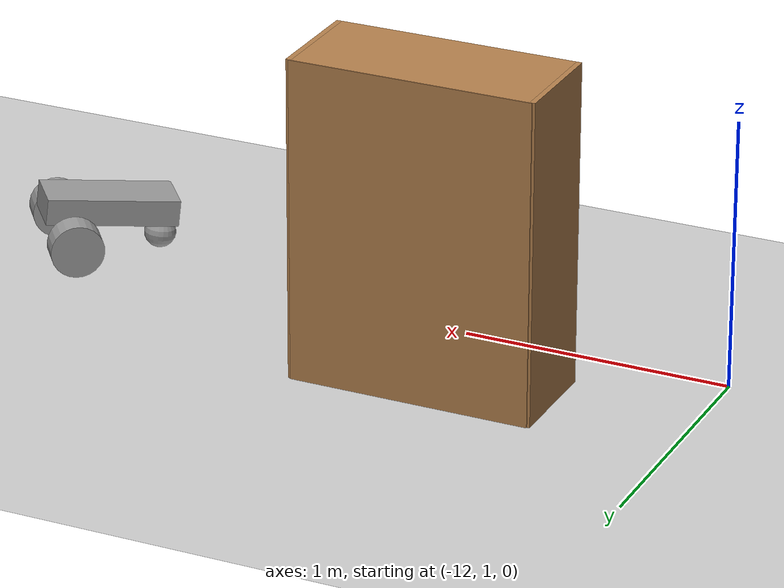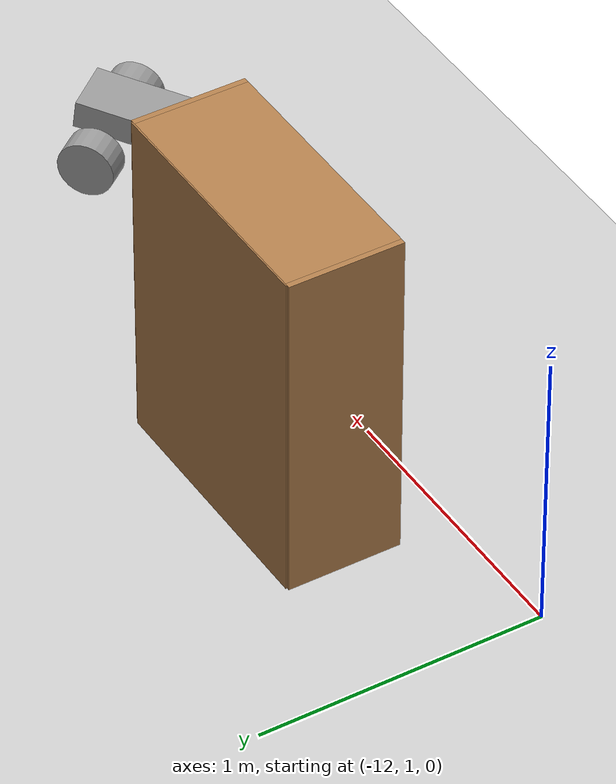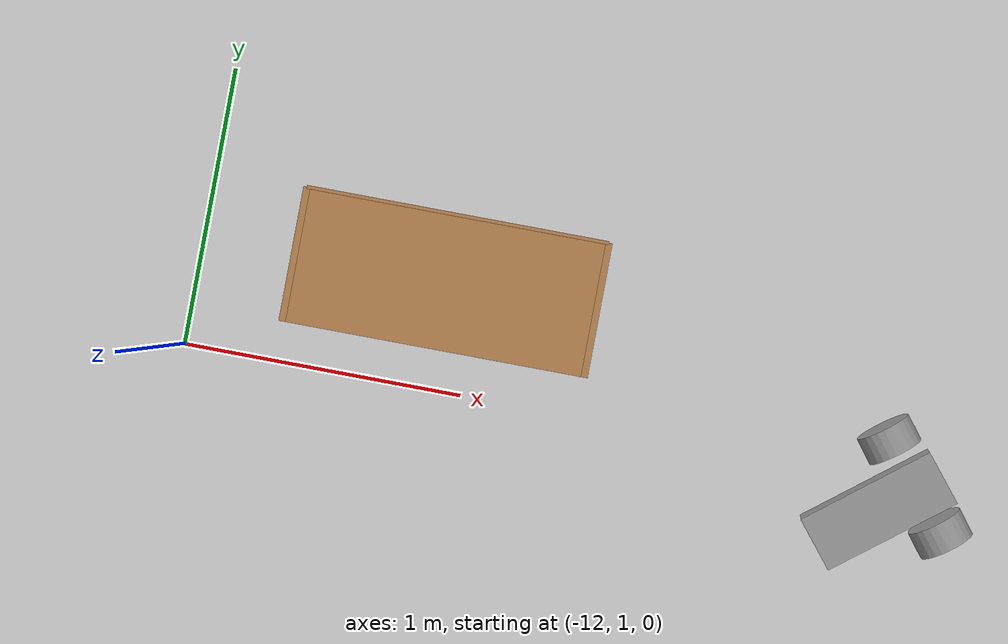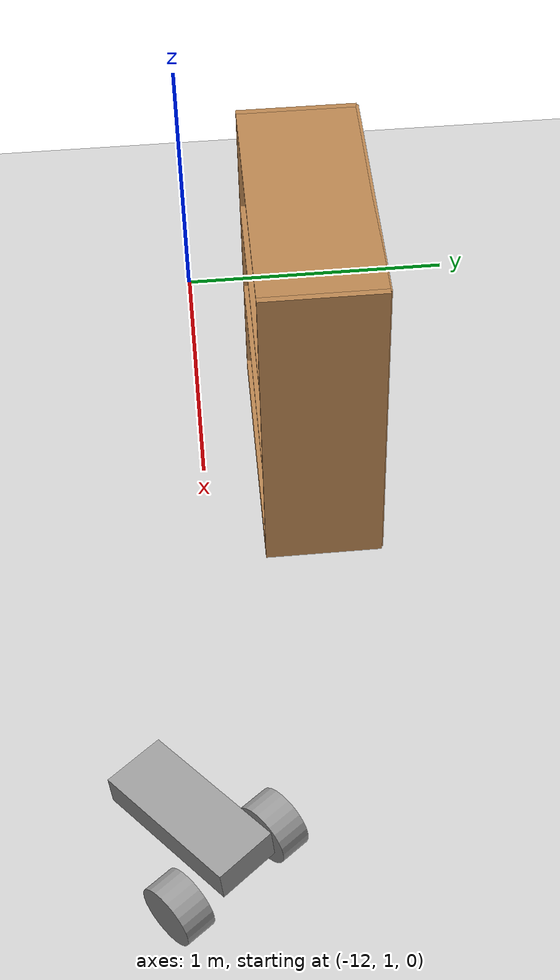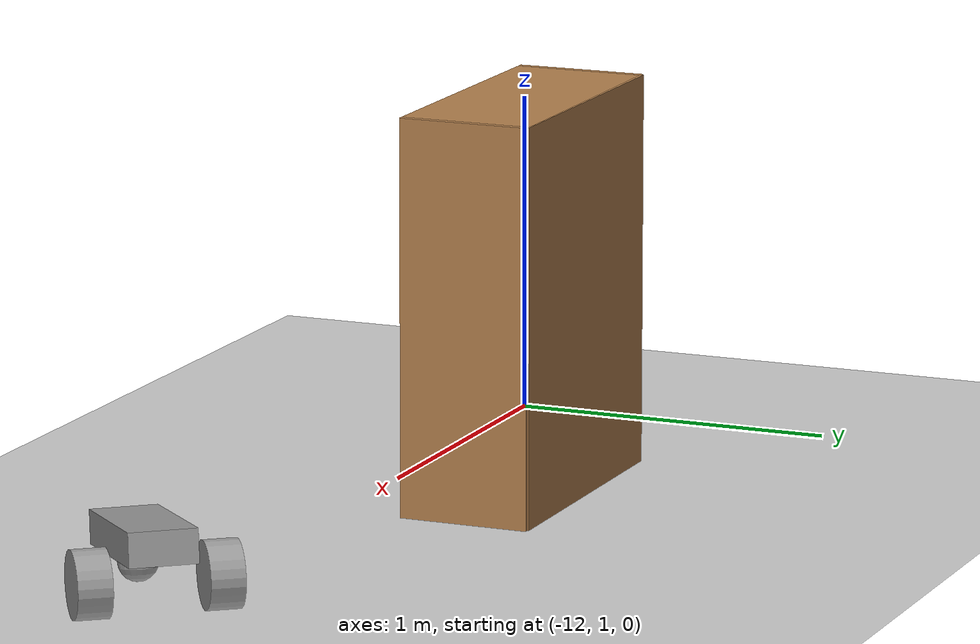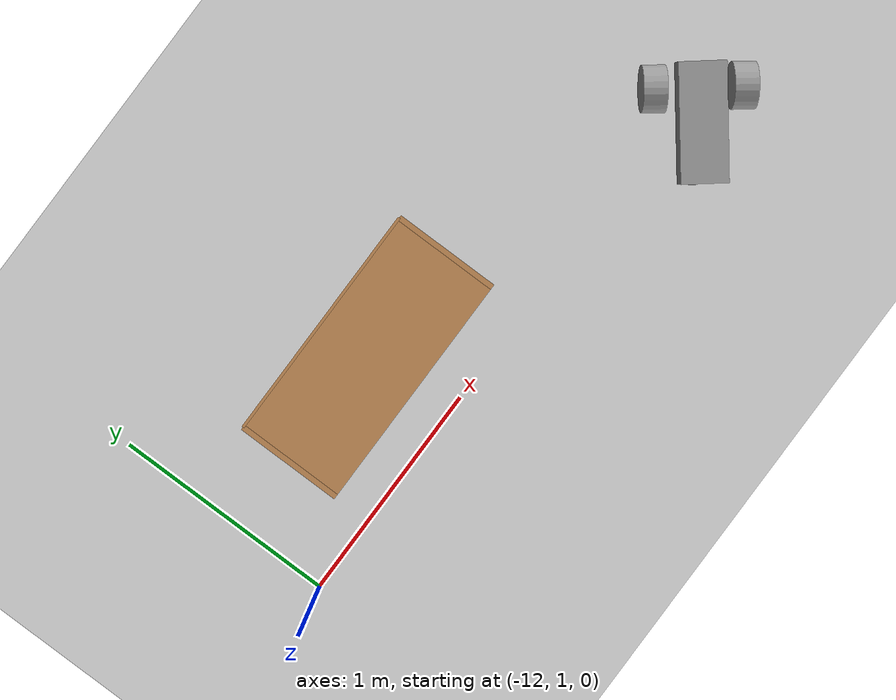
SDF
<sdf version="1.6">
 <world name="default">
  <model name="ground_plane">
   <static>1</static>
   <link name="link">
    <collision name="collision">
     <geometry><plane><normal>0 0 1</normal><size>100 100</size></plane></geometry>
     <surface><friction><ode><mu>100</mu><mu2>50</mu2></ode></friction></surface>
    </collision>
    <visual name="visual">
     <cast_shadows>0</cast_shadows>
     <geometry><plane><normal>0 0 1</normal><size>100 100</size></plane></geometry>
     <material>
      <script><uri>file://media/materials/scripts/gazebo.material</uri><name>Gazebo/Grey</name></script>
     </material>
    </visual>
   </link>
  </model>
  <model name="project3wheelrobot_0">
   <link name="link_0">
    <pose>0.004117 -0.024254 0.075 0 -0 0</pose>
    <inertial>
     <mass>1</mass>
     <inertia>
      <ixx>0.166667</ixx>
      <ixy>0</ixy>
      <ixz>0</ixz>
      <iyy>0.166667</iyy>
      <iyz>0</iyz>
      <izz>0.166667</izz>
     </inertia>
    </inertial>
    <visual name="visual">
     <geometry><box><size>0.2 0.5 0.1</size></box></geometry>
     <material>
      <lighting>1</lighting>
      <script><uri>file://media/materials/scripts/gazebo.material</uri><name>Gazebo/Grey</name></script>
      <shader type="pixel"><normal_map>__default__</normal_map></shader>
      <ambient>0.3 0.3 0.3 1</ambient>
      <diffuse>0.7 0.7 0.7 1</diffuse>
      <specular>0.01 0.01 0.01 1</specular>
      <emissive>0 0 0 1</emissive>
     </material>
    </visual>
    <collision name="collision">
     <geometry><box><size>0.2 0.5 0.1</size></box></geometry>
     <surface>
      <friction>
       <ode><mu>1</mu><mu2>1</mu2><fdir1>0 0 0</fdir1><slip1>0</slip1><slip2>0</slip2></ode>
       <torsional>
        <coefficient>1</coefficient>
        <patch_radius>0</patch_radius>
        <surface_radius>0</surface_radius>
        <use_patch_radius>1</use_patch_radius>
        <ode><slip>0</slip></ode>
       </torsional>
      </friction>
      <bounce><restitution_coefficient>0</restitution_coefficient><threshold>1e+06</threshold></bounce>
      <contact>
       <collide_without_contact>0</collide_without_contact>
       <collide_without_contact_bitmask>1</collide_without_contact_bitmask>
       <collide_bitmask>1</collide_bitmask>
       <ode>
        <soft_cfm>0</soft_cfm>
        <soft_erp>0.2</soft_erp>
        <kp>1e+13</kp>
        <kd>1</kd>
        <max_vel>0.01</max_vel>
        <min_depth>0</min_depth>
       </ode>
       <bullet>
        <split_impulse>1</split_impulse>
        <split_impulse_penetration_threshold>-0.01</split_impulse_penetration_threshold>
        <soft_cfm>0</soft_cfm>
        <soft_erp>0.2</soft_erp>
        <kp>1e+13</kp>
        <kd>1</kd>
       </bullet>
      </contact>
     </surface>
    </collision>
   </link>
   <link name="link_1">
    <pose>-0.17975 0.12395 -0.025 1.57079 9.6e-05 1.54665</pose>
    <inertial>
     <mass>1</mass>
     <inertia><ixx>0.145833</ixx><ixy>0</ixy><ixz>0</ixz><iyy>0.145833</iyy><iyz>0</iyz><izz>0.125</izz></inertia>
    </inertial>
    <visual name="visual">
     <geometry><cylinder><radius>0.1</radius><length>0.1</length></cylinder></geometry>
     <material>
      <lighting>1</lighting>
      <script><uri>file://media/materials/scripts/gazebo.material</uri><name>Gazebo/Grey</name></script>
      <shader type="pixel"><normal_map>__default__</normal_map></shader>
      <ambient>0.3 0.3 0.3 1</ambient>
      <diffuse>0.7 0.7 0.7 1</diffuse>
      <specular>0.01 0.01 0.01 1</specular>
      <emissive>0 0 0 1</emissive>
     </material>
    </visual>
    <collision name="collision">
     <geometry><cylinder><radius>0.1</radius><length>0.1</length></cylinder></geometry>
     <surface>
      <friction>
       <ode><mu>1</mu><mu2>1</mu2><fdir1>0 0 0</fdir1><slip1>0</slip1><slip2>0</slip2></ode>
       <torsional>
        <coefficient>1</coefficient>
        <patch_radius>0</patch_radius>
        <surface_radius>0</surface_radius>
        <use_patch_radius>1</use_patch_radius>
        <ode><slip>0</slip></ode>
       </torsional>
      </friction>
      <bounce><restitution_coefficient>0</restitution_coefficient><threshold>1e+06</threshold></bounce>
      <contact>
       <collide_without_contact>0</collide_without_contact>
       <collide_without_contact_bitmask>1</collide_without_contact_bitmask>
       <collide_bitmask>1</collide_bitmask>
       <ode>
        <soft_cfm>0</soft_cfm>
        <soft_erp>0.2</soft_erp>
        <kp>1e+13</kp>
        <kd>1</kd>
        <max_vel>0.01</max_vel>
        <min_depth>0</min_depth>
       </ode>
       <bullet>
        <split_impulse>1</split_impulse>
        <split_impulse_penetration_threshold>-0.01</split_impulse_penetration_threshold>
        <soft_cfm>0</soft_cfm>
        <soft_erp>0.2</soft_erp>
        <kp>1e+13</kp>
        <kd>1</kd>
       </bullet>
      </contact>
     </surface>
    </collision>
   </link>
   <link name="link_1_clone">
    <pose>0.196517 0.124558 -0.025 1.57079 9.6e-05 1.54665</pose>
    <inertial>
     <mass>1</mass>
     <inertia><ixx>0.145833</ixx><ixy>0</ixy><ixz>0</ixz><iyy>0.145833</iyy><iyz>0</iyz><izz>0.125</izz></inertia>
    </inertial>
    <visual name="visual">
     <geometry><cylinder><radius>0.1</radius><length>0.1</length></cylinder></geometry>
     <material>
      <lighting>1</lighting>
      <script><uri>file://media/materials/scripts/gazebo.material</uri><name>Gazebo/Grey</name></script>
      <shader type="pixel"><normal_map>__default__</normal_map></shader>
      <ambient>0.3 0.3 0.3 1</ambient>
      <diffuse>0.7 0.7 0.7 1</diffuse>
      <specular>0.01 0.01 0.01 1</specular>
      <emissive>0 0 0 1</emissive>
     </material>
    </visual>
    <collision name="collision">
     <geometry><cylinder><radius>0.1</radius><length>0.1</length></cylinder></geometry>
     <surface>
      <friction>
       <ode><mu>1</mu><mu2>1</mu2><fdir1>0 0 0</fdir1><slip1>0</slip1><slip2>0</slip2></ode>
       <torsional>
        <coefficient>1</coefficient>
        <patch_radius>0</patch_radius>
        <surface_radius>0</surface_radius>
        <use_patch_radius>1</use_patch_radius>
        <ode><slip>0</slip></ode>
       </torsional>
      </friction>
      <bounce><restitution_coefficient>0</restitution_coefficient><threshold>1e+06</threshold></bounce>
      <contact>
       <collide_without_contact>0</collide_without_contact>
       <collide_without_contact_bitmask>1</collide_without_contact_bitmask>
       <collide_bitmask>1</collide_bitmask>
       <ode>
        <soft_cfm>0</soft_cfm>
        <soft_erp>0.2</soft_erp>
        <kp>1e+13</kp>
        <kd>1</kd>
        <max_vel>0.01</max_vel>
        <min_depth>0</min_depth>
       </ode>
       <bullet>
        <split_impulse>1</split_impulse>
        <split_impulse_penetration_threshold>-0.01</split_impulse_penetration_threshold>
        <soft_cfm>0</soft_cfm>
        <soft_erp>0.2</soft_erp>
        <kp>1e+13</kp>
        <kd>1</kd>
       </bullet>
      </contact>
     </surface>
    </collision>
   </link>
   <link name="link_2">
    <pose>-0.020883 -0.224254 -0.025 0 -0 0</pose>
    <inertial>
     <mass>1</mass>
     <inertia><ixx>0.1</ixx><ixy>0</ixy><ixz>0</ixz><iyy>0.1</iyy><iyz>0</iyz><izz>0.1</izz></inertia>
    </inertial>
    <visual name="visual">
     <geometry><sphere><radius>0.06</radius></sphere></geometry>
     <material>
      <lighting>1</lighting>
      <script><uri>file://media/materials/scripts/gazebo.material</uri><name>Gazebo/Grey</name></script>
      <shader type="pixel"><normal_map>__default__</normal_map></shader>
      <ambient>0.3 0.3 0.3 1</ambient>
      <diffuse>0.7 0.7 0.7 1</diffuse>
      <specular>0.01 0.01 0.01 1</specular>
      <emissive>0 0 0 1</emissive>
     </material>
    </visual>
    <collision name="collision">
     <geometry><sphere><radius>0.06</radius></sphere></geometry>
     <surface>
      <friction>
       <ode><mu>1</mu><mu2>1</mu2><fdir1>0 0 0</fdir1><slip1>0</slip1><slip2>0</slip2></ode>
       <torsional>
        <coefficient>1</coefficient>
        <patch_radius>0</patch_radius>
        <surface_radius>0</surface_radius>
        <use_patch_radius>1</use_patch_radius>
        <ode><slip>0</slip></ode>
       </torsional>
      </friction>
      <bounce><restitution_coefficient>0</restitution_coefficient><threshold>1e+06</threshold></bounce>
      <contact>
       <collide_without_contact>0</collide_without_contact>
       <collide_without_contact_bitmask>1</collide_without_contact_bitmask>
       <collide_bitmask>1</collide_bitmask>
       <ode>
        <soft_cfm>0</soft_cfm>
        <soft_erp>0.2</soft_erp>
        <kp>1e+13</kp>
        <kd>1</kd>
        <max_vel>0.01</max_vel>
        <min_depth>0</min_depth>
       </ode>
       <bullet>
        <split_impulse>1</split_impulse>
        <split_impulse_penetration_threshold>-0.01</split_impulse_penetration_threshold>
        <soft_cfm>0</soft_cfm>
        <soft_erp>0.2</soft_erp>
        <kp>1e+13</kp>
        <kd>1</kd>
       </bullet>
      </contact>
     </surface>
    </collision>
   </link>
   <joint name="link_0_JOINT_0" type="revolute">
    <parent>link_0</parent>
    <child>link_1</child>
    <axis>
     <xyz>0 0 1</xyz>
     <use_parent_model_frame>0</use_parent_model_frame>
     <limit>
      <lower>-1.79769e+308</lower>
      <upper>1.79769e+308</upper>
      <effort>-1</effort>
      <velocity>-1</velocity>
     </limit>
     <dynamics>
      <spring_reference>0</spring_reference>
      <spring_stiffness>0</spring_stiffness>
      <damping>0</damping>
     </dynamics>
    </axis>
    <physics>
     <ode><limit><cfm>0</cfm><erp>0.2</erp></limit><suspension><cfm>0</cfm><erp>0.2</erp></suspension></ode>
    </physics>
   </joint>
   <joint name="link_0_JOINT_1" type="revolute">
    <parent>link_0</parent>
    <child>link_1_clone</child>
    <axis>
     <xyz>0 0 1</xyz>
     <use_parent_model_frame>0</use_parent_model_frame>
     <limit>
      <lower>-1.79769e+308</lower>
      <upper>1.79769e+308</upper>
      <effort>-1</effort>
      <velocity>-1</velocity>
     </limit>
     <dynamics>
      <spring_reference>0</spring_reference>
      <spring_stiffness>0</spring_stiffness>
      <damping>0</damping>
     </dynamics>
    </axis>
    <physics>
     <ode><limit><cfm>0</cfm><erp>0.2</erp></limit><suspension><cfm>0</cfm><erp>0.2</erp></suspension></ode>
    </physics>
   </joint>
   <joint name="link_0_JOINT_2" type="revolute">
    <parent>link_0</parent>
    <child>link_1_clone</child>
    <axis>
     <xyz>0 0 1</xyz>
     <use_parent_model_frame>0</use_parent_model_frame>
     <limit>
      <lower>-1.79769e+308</lower>
      <upper>1.79769e+308</upper>
      <effort>-1</effort>
      <velocity>-1</velocity>
     </limit>
     <dynamics>
      <spring_reference>0</spring_reference>
      <spring_stiffness>0</spring_stiffness>
      <damping>0</damping>
     </dynamics>
    </axis>
    <physics>
     <ode><limit><cfm>0</cfm><erp>0.2</erp></limit><suspension><cfm>0</cfm><erp>0.2</erp></suspension></ode>
    </physics>
   </joint>
   <joint name="link_0_JOINT_3" type="revolute">
    <parent>link_0</parent>
    <child>link_1</child>
    <axis>
     <xyz>0 0 1</xyz>
     <use_parent_model_frame>0</use_parent_model_frame>
     <limit>
      <lower>-1.79769e+308</lower>
      <upper>1.79769e+308</upper>
      <effort>-1</effort>
      <velocity>-1</velocity>
     </limit>
     <dynamics>
      <spring_reference>0</spring_reference>
      <spring_stiffness>0</spring_stiffness>
      <damping>0</damping>
     </dynamics>
    </axis>
    <physics>
     <ode><limit><cfm>0</cfm><erp>0.2</erp></limit><suspension><cfm>0</cfm><erp>0.2</erp></suspension></ode>
    </physics>
   </joint>
   <joint name="link_0_JOINT_4" type="revolute">
    <parent>link_0</parent>
    <child>link_1_clone</child>
    <axis>
     <xyz>1 0 0</xyz>
     <use_parent_model_frame>0</use_parent_model_frame>
     <limit>
      <lower>-1.79769e+308</lower>
      <upper>1.79769e+308</upper>
      <effort>-1</effort>
      <velocity>-1</velocity>
     </limit>
     <dynamics>
      <spring_reference>0</spring_reference>
      <spring_stiffness>0</spring_stiffness>
      <damping>0</damping>
     </dynamics>
    </axis>
    <physics>
     <ode><limit><cfm>0</cfm><erp>0.2</erp></limit><suspension><cfm>0</cfm><erp>0.2</erp></suspension></ode>
    </physics>
   </joint>
   <joint name="link_0_JOINT_5" type="revolute">
    <parent>link_0</parent>
    <child>link_1_clone</child>
    <axis>
     <xyz>0 0 1</xyz>
     <use_parent_model_frame>0</use_parent_model_frame>
     <limit>
      <lower>-1.79769e+308</lower>
      <upper>1.79769e+308</upper>
      <effort>-1</effort>
      <velocity>-1</velocity>
     </limit>
     <dynamics>
      <spring_reference>0</spring_reference>
      <spring_stiffness>0</spring_stiffness>
      <damping>0</damping>
     </dynamics>
    </axis>
    <physics>
     <ode><limit><cfm>0</cfm><erp>0.2</erp></limit><suspension><cfm>0</cfm><erp>0.2</erp></suspension></ode>
    </physics>
   </joint>
   <joint name="link_0_JOINT_7" type="ball">
    <parent>link_0</parent>
    <child>link_2</child>
    <physics>
     <ode><limit><cfm>0</cfm><erp>0.2</erp></limit><suspension><cfm>0</cfm><erp>0.2</erp></suspension></ode>
    </physics>
   </joint>
   <static>0</static>
   <pose>-9.46881 0.912005 0.110666 0.115473 0.000192 -0.889537</pose>
  </model>
  <model name="bookshelf">
   <static>1</static>
   <link name="link">
    <inertial><mass>1</mass></inertial>
    <collision name="back">
     <pose>0 0.005 0.6 0 -0 0</pose>
     <geometry><box><size>0.9 0.01 1.2</size></box></geometry>
    </collision>
    <visual name="visual1">
     <pose>0 0.005 0.6 0 -0 0</pose>
     <geometry><box><size>0.9 0.01 1.2</size></box></geometry>
     <material>
      <script><uri>file://media/materials/scripts/gazebo.material</uri><name>Gazebo/Wood</name></script>
     </material>
    </visual>
    <collision name="left_side">
     <pose>0.45 -0.195 0.6 0 -0 0</pose>
     <geometry><box><size>0.02 0.4 1.2</size></box></geometry>
    </collision>
    <visual name="visual2">
     <pose>0.45 -0.195 0.6 0 -0 0</pose>
     <geometry><box><size>0.02 0.4 1.2</size></box></geometry>
     <material>
      <script><uri>file://media/materials/scripts/gazebo.material</uri><name>Gazebo/Wood</name></script>
     </material>
    </visual>
    <collision name="right_side">
     <pose>-0.45 -0.195 0.6 0 -0 0</pose>
     <geometry><box><size>0.02 0.4 1.2</size></box></geometry>
    </collision>
    <visual name="visual3">
     <pose>-0.45 -0.195 0.6 0 -0 0</pose>
     <geometry><box><size>0.02 0.4 1.2</size></box></geometry>
     <material>
      <script><uri>file://media/materials/scripts/gazebo.material</uri><name>Gazebo/Wood</name></script>
     </material>
    </visual>
    <collision name="bottom">
     <pose>0 -0.195 0.03 0 -0 0</pose>
     <geometry><box><size>0.88 0.4 0.06</size></box></geometry>
    </collision>
    <visual name="visual4">
     <pose>0 -0.195 0.03 0 -0 0</pose>
     <geometry><box><size>0.88 0.4 0.06</size></box></geometry>
     <material>
      <script><uri>file://media/materials/scripts/gazebo.material</uri><name>Gazebo/Wood</name></script>
     </material>
    </visual>
    <collision name="top">
     <pose>0 -0.195 1.19 0 -0 0</pose>
     <geometry><box><size>0.88 0.4 0.02</size></box></geometry>
    </collision>
    <visual name="visual5">
     <pose>0 -0.195 1.19 0 -0 0</pose>
     <geometry><box><size>0.88 0.4 0.02</size></box></geometry>
     <material>
      <script><uri>file://media/materials/scripts/gazebo.material</uri><name>Gazebo/Wood</name></script>
     </material>
    </visual>
    <collision name="low_shelf">
     <pose>0 -0.195 0.43 0 -0 0</pose>
     <geometry><box><size>0.88 0.4 0.02</size></box></geometry>
    </collision>
    <visual name="visual6">
     <pose>0 -0.195 0.43 0 -0 0</pose>
     <geometry><box><size>0.88 0.4 0.02</size></box></geometry>
     <material>
      <script><uri>file://media/materials/scripts/gazebo.material</uri><name>Gazebo/Wood</name></script>
     </material>
    </visual>
    <collision name="high_shelf">
     <pose>0 -0.195 0.8 0 -0 0</pose>
     <geometry><box><size>0.88 0.4 0.02</size></box></geometry>
    </collision>
    <visual name="visual7">
     <pose>0 -0.195 0.8 0 -0 0</pose>
     <geometry><box><size>0.88 0.4 0.02</size></box></geometry>
     <material>
      <script><uri>file://media/materials/scripts/gazebo.material</uri><name>Gazebo/Wood</name></script>
     </material>
    </visual>
   </link>
   <pose>-11.0403 1.58834 0 0 -0 0</pose>
  </model>
 </world>
</sdf>
